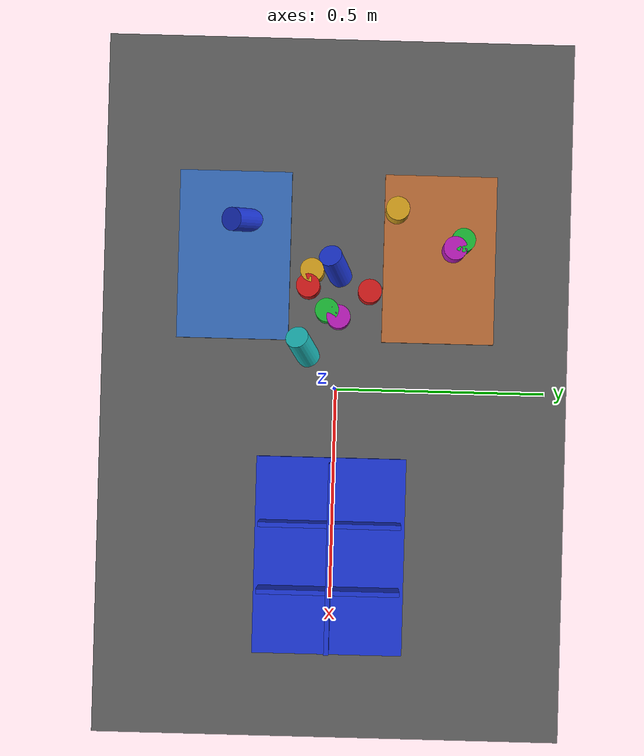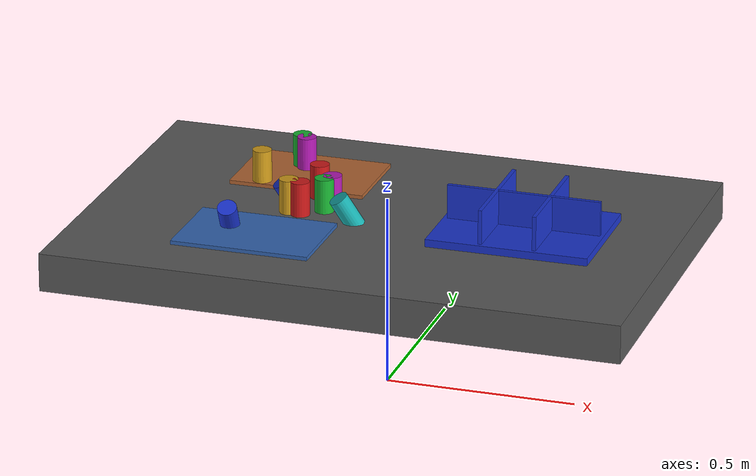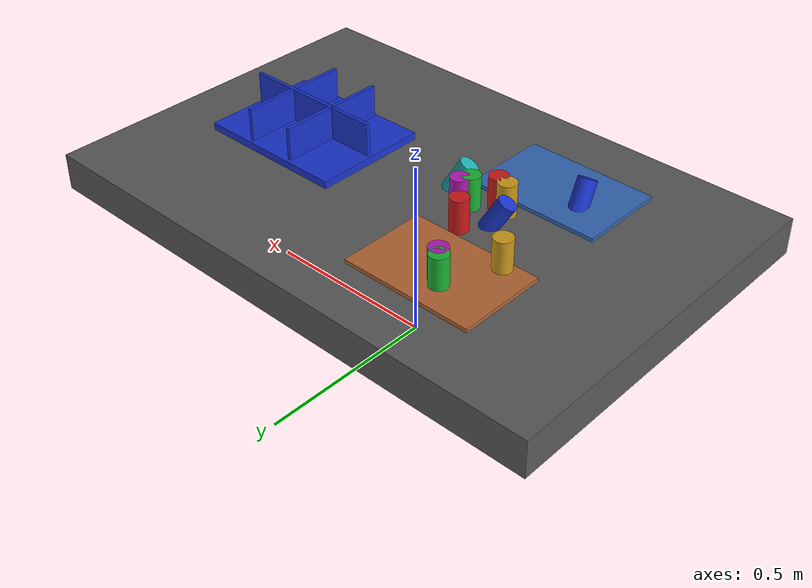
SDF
<?xml version="1.0" ?>
<sdf version="1.9">
  <!-- Standalone M1B scene.  The controller-backed Panda is spawned by the
       existing launch path; this file never alters the frozen M1A cube world. -->
  <world name="industrial_cylinder_v1">
    <physics name="bullet" type="bullet"><max_step_size>0.001</max_step_size><real_time_factor>1.0</real_time_factor></physics>
    <plugin name="gz::sim::systems::Physics" filename="gz-sim-physics-system"><engine><filename>gz-physics-bullet-featherstone-plugin</filename></engine></plugin>
    <plugin name="gz::sim::systems::UserCommands" filename="gz-sim-user-commands-system"/>
    <plugin name="gz::sim::systems::SceneBroadcaster" filename="gz-sim-scene-broadcaster-system"/>
    <plugin name="gz::sim::systems::Sensors" filename="gz-sim-sensors-system"><render_engine>ogre2</render_engine></plugin>
    <gravity>0 0 -9.81</gravity>
    <light type="directional" name="industrial_light"><pose>0 0 5 0 0 0</pose><direction>-0.3 0.2 -0.9</direction><diffuse>0.9 0.9 0.9 1</diffuse></light>
    <model name="industrial_work_table"><static>true</static><link name="link"><pose>0 0 0.4 0 0 0</pose><collision name="collision"><geometry><box><size>1.5 1.0 0.1</size></box></geometry></collision><visual name="visual"><geometry><box><size>1.5 1.0 0.1</size></box></geometry><material><diffuse>0.35 0.35 0.35 1</diffuse></material></visual></link></model>
    <model name="camera_fixture"><static>true</static><link name="camera_rgbd"><pose>-0.80 -0.80 1.40 0 0.77 0.93</pose><sensor name="front_rgbd" type="rgbd_camera"><always_on>1</always_on><update_rate>15</update_rate><topic>/xh/camera/rgbd</topic><camera><horizontal_fov>1.047</horizontal_fov><image><width>640</width><height>480</height><format>R8G8B8</format></image><clip><near>0.1</near><far>4.0</far></clip></camera></sensor></link></model>
    <model name="incoming_zone_a"><static>true</static><link name="link"><pose>-0.28 -0.22 0.455 0 0 0</pose><visual name="visual"><geometry><box><size>0.36 0.24 0.01</size></box></geometry><material><diffuse>0.2 0.4 0.7 1</diffuse></material></visual></link></model>
    <model name="incoming_zone_b"><static>true</static><link name="link"><pose>-0.28 0.22 0.455 0 0 0</pose><visual name="visual"><geometry><box><size>0.36 0.24 0.01</size></box></geometry><material><diffuse>0.7 0.4 0.2 1</diffuse></material></visual></link></model>
    <!-- M1B_RANDOM_PARTS_BEGIN -->
    <model name="cylinder_01"><pose>-0.2042 0.0722 0.5000 0.0000 0.0000 1.6400</pose><link name="link"><inertial><mass>0.06</mass></inertial><collision name="collision"><geometry><cylinder><radius>0.025</radius><length>0.09</length></cylinder></geometry></collision><visual name="visual"><geometry><cylinder><radius>0.025</radius><length>0.09</length></cylinder></geometry><material><diffuse>0.800 0.100 0.100 1</diffuse><specular>0.15 0.15 0.15 1</specular></material></visual></link></model>
    <model name="cylinder_02"><pose>-0.3163 0.2665 0.5000 3.1416 0.0000 -0.7797</pose><link name="link"><inertial><mass>0.06</mass></inertial><collision name="collision"><geometry><cylinder><radius>0.025</radius><length>0.09</length></cylinder></geometry></collision><visual name="visual"><geometry><cylinder><radius>0.025</radius><length>0.09</length></cylinder></geometry><material><diffuse>0.100 0.700 0.200 1</diffuse><specular>0.15 0.15 0.15 1</specular></material></visual></link></model>
    <model name="cylinder_03"><pose>-0.3533 -0.2014 0.4800 0.4500 -0.3000 0.6743</pose><link name="link"><inertial><mass>0.06</mass></inertial><collision name="collision"><geometry><cylinder><radius>0.025</radius><length>0.09</length></cylinder></geometry></collision><visual name="visual"><geometry><cylinder><radius>0.025</radius><length>0.09</length></cylinder></geometry><material><diffuse>0.100 0.200 0.800 1</diffuse><specular>0.15 0.15 0.15 1</specular></material></visual></link></model>
    <model name="cylinder_04"><pose>-0.3793 0.1267 0.5000 0.0000 0.0000 -2.9088</pose><link name="link"><inertial><mass>0.06</mass></inertial><collision name="collision"><geometry><cylinder><radius>0.025</radius><length>0.09</length></cylinder></geometry></collision><visual name="visual"><geometry><cylinder><radius>0.025</radius><length>0.09</length></cylinder></geometry><material><diffuse>0.800 0.600 0.100 1</diffuse><specular>0.15 0.15 0.15 1</specular></material></visual></link></model>
    <model name="cylinder_05"><pose>-0.1489 0.0075 0.5000 3.1416 0.0000 -2.5333</pose><link name="link"><inertial><mass>0.06</mass></inertial><collision name="collision"><geometry><cylinder><radius>0.025</radius><length>0.09</length></cylinder></geometry></collision><visual name="visual"><geometry><cylinder><radius>0.025</radius><length>0.09</length></cylinder></geometry><material><diffuse>0.700 0.100 0.700 1</diffuse><specular>0.15 0.15 0.15 1</specular></material></visual></link></model>
    <model name="cylinder_06"><pose>-0.0846 -0.0674 0.4800 0.4500 -0.3000 -0.4676</pose><link name="link"><inertial><mass>0.06</mass></inertial><collision name="collision"><geometry><cylinder><radius>0.025</radius><length>0.09</length></cylinder></geometry></collision><visual name="visual"><geometry><cylinder><radius>0.025</radius><length>0.09</length></cylinder></geometry><material><diffuse>0.100 0.700 0.700 1</diffuse><specular>0.15 0.15 0.15 1</specular></material></visual></link></model>
    <model name="cylinder_07"><pose>-0.2129 -0.0581 0.5000 0.0000 0.0000 1.0531</pose><link name="link"><inertial><mass>0.06</mass></inertial><collision name="collision"><geometry><cylinder><radius>0.025</radius><length>0.09</length></cylinder></geometry></collision><visual name="visual"><geometry><cylinder><radius>0.025</radius><length>0.09</length></cylinder></geometry><material><diffuse>0.800 0.100 0.100 1</diffuse><specular>0.15 0.15 0.15 1</specular></material></visual></link></model>
    <model name="cylinder_08"><pose>-0.1620 -0.0173 0.5000 3.1416 0.0000 0.9948</pose><link name="link"><inertial><mass>0.06</mass></inertial><collision name="collision"><geometry><cylinder><radius>0.025</radius><length>0.09</length></cylinder></geometry></collision><visual name="visual"><geometry><cylinder><radius>0.025</radius><length>0.09</length></cylinder></geometry><material><diffuse>0.100 0.700 0.200 1</diffuse><specular>0.15 0.15 0.15 1</specular></material></visual></link></model>
    <model name="cylinder_09"><pose>-0.2584 -0.0015 0.4800 0.4500 -0.3000 -0.4970</pose><link name="link"><inertial><mass>0.06</mass></inertial><collision name="collision"><geometry><cylinder><radius>0.025</radius><length>0.09</length></cylinder></geometry></collision><visual name="visual"><geometry><cylinder><radius>0.025</radius><length>0.09</length></cylinder></geometry><material><diffuse>0.100 0.200 0.800 1</diffuse><specular>0.15 0.15 0.15 1</specular></material></visual></link></model>
    <model name="cylinder_10"><pose>-0.2454 -0.0503 0.5000 0.0000 0.0000 1.3772</pose><link name="link"><inertial><mass>0.06</mass></inertial><collision name="collision"><geometry><cylinder><radius>0.025</radius><length>0.09</length></cylinder></geometry></collision><visual name="visual"><geometry><cylinder><radius>0.025</radius><length>0.09</length></cylinder></geometry><material><diffuse>0.800 0.600 0.100 1</diffuse><specular>0.15 0.15 0.15 1</specular></material></visual></link></model>
    <model name="cylinder_11"><pose>-0.2990 0.2495 0.5000 3.1416 0.0000 0.1853</pose><link name="link"><inertial><mass>0.06</mass></inertial><collision name="collision"><geometry><cylinder><radius>0.025</radius><length>0.09</length></cylinder></geometry></collision><visual name="visual"><geometry><cylinder><radius>0.025</radius><length>0.09</length></cylinder></geometry><material><diffuse>0.700 0.100 0.700 1</diffuse><specular>0.15 0.15 0.15 1</specular></material></visual></link></model>
    <!-- M1B_RANDOM_PARTS_END -->
    <model name="blue_partition_bin"><static>true</static><pose>0.36 0 0.45 0 0 0</pose><link name="link"><collision name="floor"><pose>0 0 0.01 0 0 0</pose><geometry><box><size>0.42 0.32 0.02</size></box></geometry></collision><visual name="floor_visual"><pose>0 0 0.01 0 0 0</pose><geometry><box><size>0.42 0.32 0.02</size></box></geometry><material><diffuse>0.1 0.2 0.8 1</diffuse></material></visual><visual name="row_divider"><pose>0 0 0.06 0 0 0</pose><geometry><box><size>0.40 0.01 0.10</size></box></geometry><material><diffuse>0.1 0.2 0.8 1</diffuse></material></visual><visual name="col_divider_a"><pose>-0.07 0 0.06 0 0 0</pose><geometry><box><size>0.01 0.30 0.10</size></box></geometry><material><diffuse>0.1 0.2 0.8 1</diffuse></material></visual><visual name="col_divider_b"><pose>0.07 0 0.06 0 0 0</pose><geometry><box><size>0.01 0.30 0.10</size></box></geometry><material><diffuse>0.1 0.2 0.8 1</diffuse></material></visual></link></model>
    <!-- Reserved only: second table, bin transport corridor, stackable-bin
         collision volume, and second arm mounting namespace. -->
  </world>
</sdf>
